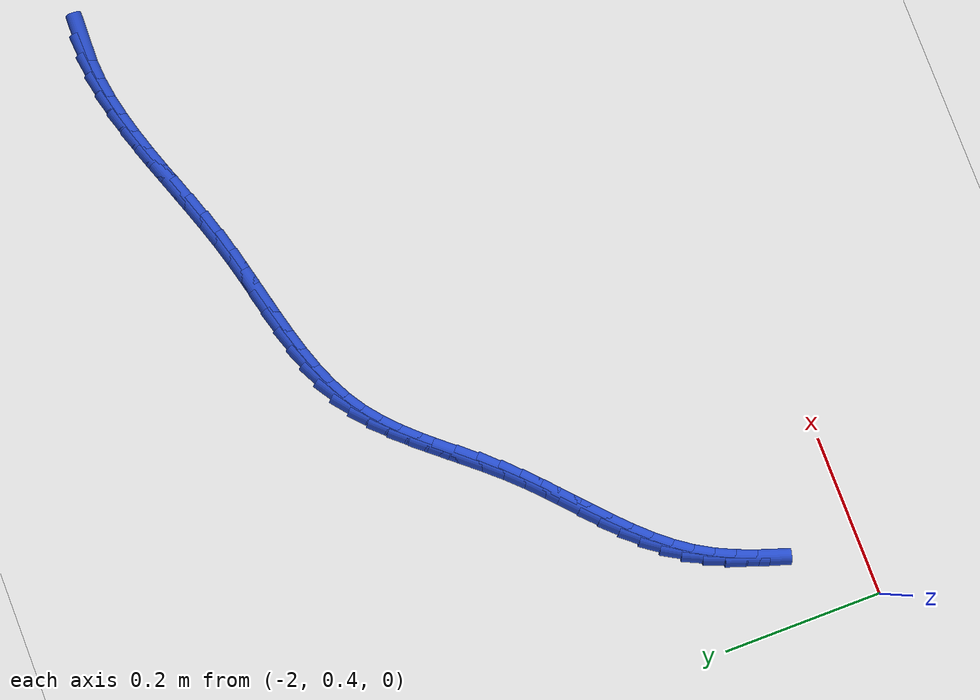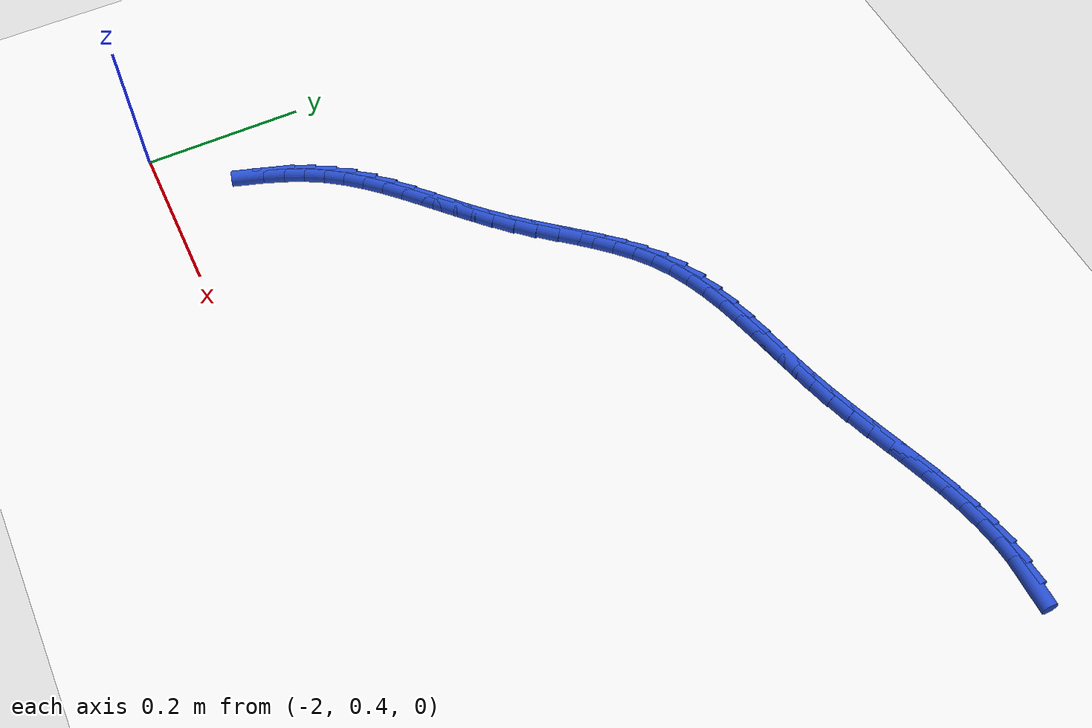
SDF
<sdf version="1.6">
 <world name="default">
  <model name="ground_plane">
   <static>1</static>
   <link name="link">
    <collision name="collision">
     <geometry><plane><normal>0 0 1</normal><size>100 100</size></plane></geometry>
     <surface><friction><ode><mu>100</mu><mu2>50</mu2></ode></friction></surface>
    </collision>
    <visual name="visual">
     <cast_shadows>0</cast_shadows>
     <geometry><plane><normal>0 0 1</normal><size>100 100</size></plane></geometry>
     <material>
      <script><uri>file://media/materials/scripts/gazebo.material</uri><name>Gazebo/WhiteGlow</name></script>
     </material>
    </visual>
   </link>
  </model>
  <model name="line">
   <link name="link_60">
    <pose>-1.0247325221904307 1.0710329499741589 0.01 0 1.57 -0.023708304292810196</pose>
    <collision name="collision">
     <geometry><cylinder><radius>0.01</radius><length>0.08</length></cylinder></geometry>
    </collision>
    <visual name="visual">
     <material>
      <script><name>Gazebo/Blue</name><uri>file://media/materials/scripts/gazebo.material</uri></script>
     </material>
     <geometry><cylinder><radius>0.01</radius><length>0.08</length></cylinder></geometry>
    </visual>
   </link>
   <link name="link_61">
    <pose>-1.0502172767384688 1.071637263518984 0.01 0 1.57 0.07343296345596102</pose>
    <collision name="collision">
     <geometry><cylinder><radius>0.01</radius><length>0.08</length></cylinder></geometry>
    </collision>
    <visual name="visual">
     <material>
      <script><name>Gazebo/Blue</name><uri>file://media/materials/scripts/gazebo.material</uri></script>
     </material>
     <geometry><cylinder><radius>0.01</radius><length>0.08</length></cylinder></geometry>
    </visual>
   </link>
   <link name="link_62">
    <pose>-1.0759186140235304 1.0697465384195703 0.01 0 1.57 0.1548156123089967</pose>
    <collision name="collision">
     <geometry><cylinder><radius>0.01</radius><length>0.08</length></cylinder></geometry>
    </collision>
    <visual name="visual">
     <material>
      <script><name>Gazebo/Blue</name><uri>file://media/materials/scripts/gazebo.material</uri></script>
     </material>
     <geometry><cylinder><radius>0.01</radius><length>0.08</length></cylinder></geometry>
    </visual>
   </link>
   <link name="link_63">
    <pose>-1.1018317932852302 1.06570241225901 0.01 0 1.57 0.22054275431965478</pose>
    <collision name="collision">
     <geometry><cylinder><radius>0.01</radius><length>0.08</length></cylinder></geometry>
    </collision>
    <visual name="visual">
     <material>
      <script><name>Gazebo/Blue</name><uri>file://media/materials/scripts/gazebo.material</uri></script>
     </material>
     <geometry><cylinder><radius>0.01</radius><length>0.08</length></cylinder></geometry>
    </visual>
   </link>
   <link name="link_64">
    <pose>-1.1279520737631834 1.0598465226203937 0.01 0 1.57 0.27144656843689907</pose>
    <collision name="collision">
     <geometry><cylinder><radius>0.01</radius><length>0.08</length></cylinder></geometry>
    </collision>
    <visual name="visual">
     <material>
      <script><name>Gazebo/Blue</name><uri>file://media/materials/scripts/gazebo.material</uri></script>
     </material>
     <geometry><cylinder><radius>0.01</radius><length>0.08</length></cylinder></geometry>
    </visual>
   </link>
   <link name="link_65">
    <pose>-1.1542747146970058 1.0525205070868136 0.01 0 1.57 0.308608717847206</pose>
    <collision name="collision">
     <geometry><cylinder><radius>0.01</radius><length>0.08</length></cylinder></geometry>
    </collision>
    <visual name="visual">
     <material>
      <script><name>Gazebo/Blue</name><uri>file://media/materials/scripts/gazebo.material</uri></script>
     </material>
     <geometry><cylinder><radius>0.01</radius><length>0.08</length></cylinder></geometry>
    </visual>
   </link>
   <link name="link_66">
    <pose>-1.1807949753263123 1.0440660032413613 0.01 0 1.57 0.3330603810830687</pose>
    <collision name="collision">
     <geometry><cylinder><radius>0.01</radius><length>0.08</length></cylinder></geometry>
    </collision>
    <visual name="visual">
     <material>
      <script><name>Gazebo/Blue</name><uri>file://media/materials/scripts/gazebo.material</uri></script>
     </material>
     <geometry><cylinder><radius>0.01</radius><length>0.08</length></cylinder></geometry>
    </visual>
   </link>
   <link name="link_67">
    <pose>-1.2075081148907183 1.0348246486671286 0.01 0 1.57 0.3456249403016464</pose>
    <collision name="collision">
     <geometry><cylinder><radius>0.01</radius><length>0.08</length></cylinder></geometry>
    </collision>
    <visual name="visual">
     <material>
      <script><name>Gazebo/Blue</name><uri>file://media/materials/scripts/gazebo.material</uri></script>
     </material>
     <geometry><cylinder><radius>0.01</radius><length>0.08</length></cylinder></geometry>
    </visual>
   </link>
   <link name="link_68">
    <pose>-1.234409392629839 1.0251380809472073 0.01 0 1.57 0.34685127926090076</pose>
    <collision name="collision">
     <geometry><cylinder><radius>0.01</radius><length>0.08</length></cylinder></geometry>
    </collision>
    <visual name="visual">
     <material>
      <script><name>Gazebo/Blue</name><uri>file://media/materials/scripts/gazebo.material</uri></script>
     </material>
     <geometry><cylinder><radius>0.01</radius><length>0.08</length></cylinder></geometry>
    </visual>
   </link>
   <link name="link_69">
    <pose>-1.2614940677832898 1.0153479376646888 0.01 0 1.57 0.33699877376147974</pose>
    <collision name="collision">
     <geometry><cylinder><radius>0.01</radius><length>0.08</length></cylinder></geometry>
    </collision>
    <visual name="visual">
     <material>
      <script><name>Gazebo/Blue</name><uri>file://media/materials/scripts/gazebo.material</uri></script>
     </material>
     <geometry><cylinder><radius>0.01</radius><length>0.08</length></cylinder></geometry>
    </visual>
   </link>
   <link name="link_70">
    <pose>-1.2887573995906862 1.0057958564026643 0.01 0 1.57 0.31605299089268024</pose>
    <collision name="collision">
     <geometry><cylinder><radius>0.01</radius><length>0.08</length></cylinder></geometry>
    </collision>
    <visual name="visual">
     <material>
      <script><name>Gazebo/Blue</name><uri>file://media/materials/scripts/gazebo.material</uri></script>
     </material>
     <geometry><cylinder><radius>0.01</radius><length>0.08</length></cylinder></geometry>
    </visual>
   </link>
   <link name="link_71">
    <pose>-1.3161946472916428 0.996823474744226 0.01 0 1.57 0.28464280241152184</pose>
    <collision name="collision">
     <geometry><cylinder><radius>0.01</radius><length>0.08</length></cylinder></geometry>
    </collision>
    <visual name="visual">
     <material>
      <script><name>Gazebo/Blue</name><uri>file://media/materials/scripts/gazebo.material</uri></script>
     </material>
     <geometry><cylinder><radius>0.01</radius><length>0.08</length></cylinder></geometry>
    </visual>
   </link>
   <link name="link_72">
    <pose>-1.3437951036640556 0.9887479183227346 0.01 0 1.57 0.2561344135629516</pose>
    <collision name="collision">
     <geometry><cylinder><radius>0.01</radius><length>0.08</length></cylinder></geometry>
    </collision>
    <visual name="visual">
     <material>
      <script><name>Gazebo/Blue</name><uri>file://media/materials/scripts/gazebo.material</uri></script>
     </material>
     <geometry><cylinder><radius>0.01</radius><length>0.08</length></cylinder></geometry>
    </visual>
   </link>
   <link name="link_73">
    <pose>-1.3714550393645775 0.9815041510035148 0.01 0 1.57 0.24134460972041816</pose>
    <collision name="collision">
     <geometry><cylinder><radius>0.01</radius><length>0.08</length></cylinder></geometry>
    </collision>
    <visual name="visual">
     <material>
      <script><name>Gazebo/Blue</name><uri>file://media/materials/scripts/gazebo.material</uri></script>
     </material>
     <geometry><cylinder><radius>0.01</radius><length>0.08</length></cylinder></geometry>
    </visual>
   </link>
   <link name="link_74">
    <pose>-1.3989971507585357 0.9747248721917928 0.01 0 1.57 0.2407979713594593</pose>
    <collision name="collision">
     <geometry><cylinder><radius>0.01</radius><length>0.08</length></cylinder></geometry>
    </collision>
    <visual name="visual">
     <material>
      <script><name>Gazebo/Blue</name><uri>file://media/materials/scripts/gazebo.material</uri></script>
     </material>
     <geometry><cylinder><radius>0.01</radius><length>0.08</length></cylinder></geometry>
    </visual>
   </link>
   <link name="link_75">
    <pose>-1.4262421245115504 0.9680345248653577 0.01 0 1.57 0.2549683180707337</pose>
    <collision name="collision">
     <geometry><cylinder><radius>0.01</radius><length>0.08</length></cylinder></geometry>
    </collision>
    <visual name="visual">
     <material>
      <script><name>Gazebo/Blue</name><uri>file://media/materials/scripts/gazebo.material</uri></script>
     </material>
     <geometry><cylinder><radius>0.01</radius><length>0.08</length></cylinder></geometry>
    </visual>
   </link>
   <link name="link_76">
    <pose>-1.4530106472892392 0.9610575520019974 0.01 0 1.57 0.28460333692492545</pose>
    <collision name="collision">
     <geometry><cylinder><radius>0.01</radius><length>0.08</length></cylinder></geometry>
    </collision>
    <visual name="visual">
     <material>
      <script><name>Gazebo/Blue</name><uri>file://media/materials/scripts/gazebo.material</uri></script>
     </material>
     <geometry><cylinder><radius>0.01</radius><length>0.08</length></cylinder></geometry>
    </visual>
   </link>
   <link name="link_77">
    <pose>-1.4791234057572211 0.9534183965795001 0.01 0 1.57 0.33066056289350887</pose>
    <collision name="collision">
     <geometry><cylinder><radius>0.01</radius><length>0.08</length></cylinder></geometry>
    </collision>
    <visual name="visual">
     <material>
      <script><name>Gazebo/Blue</name><uri>file://media/materials/scripts/gazebo.material</uri></script>
     </material>
     <geometry><cylinder><radius>0.01</radius><length>0.08</length></cylinder></geometry>
    </visual>
   </link>
   <link name="link_78">
    <pose>-1.5044010865811153 0.9447415015756541 0.01 0 1.57 0.394105690108694</pose>
    <collision name="collision">
     <geometry><cylinder><radius>0.01</radius><length>0.08</length></cylinder></geometry>
    </collision>
    <visual name="visual">
     <material>
      <script><name>Gazebo/Blue</name><uri>file://media/materials/scripts/gazebo.material</uri></script>
     </material>
     <geometry><cylinder><radius>0.01</radius><length>0.08</length></cylinder></geometry>
    </visual>
   </link>
   <link name="link_79">
    <pose>-1.5286643764265393 0.9346513099682479 0.01 0 1.57 0.47551409956968077</pose>
    <collision name="collision">
     <geometry><cylinder><radius>0.01</radius><length>0.08</length></cylinder></geometry>
    </collision>
    <visual name="visual">
     <material>
      <script><name>Gazebo/Blue</name><uri>file://media/materials/scripts/gazebo.material</uri></script>
     </material>
     <geometry><cylinder><radius>0.01</radius><length>0.08</length></cylinder></geometry>
    </visual>
   </link>
   <link name="link_80">
    <pose>-1.5517339619591128 0.9227722647350697 0.01 0 1.57 0.5744050828690594</pose>
    <collision name="collision">
     <geometry><cylinder><radius>0.01</radius><length>0.08</length></cylinder></geometry>
    </collision>
    <visual name="visual">
     <material>
      <script><name>Gazebo/Blue</name><uri>file://media/materials/scripts/gazebo.material</uri></script>
     </material>
     <geometry><cylinder><radius>0.01</radius><length>0.08</length></cylinder></geometry>
    </visual>
   </link>
   <link name="link_81">
    <pose>-1.5734311524059512 0.908729820084007 0.01 0 1.57 0.678241673629839</pose>
    <collision name="collision">
     <geometry><cylinder><radius>0.01</radius><length>0.08</length></cylinder></geometry>
    </collision>
    <visual name="visual">
     <material>
      <script><name>Gazebo/Blue</name><uri>file://media/materials/scripts/gazebo.material</uri></script>
     </material>
     <geometry><cylinder><radius>0.01</radius><length>0.08</length></cylinder></geometry>
    </visual>
   </link>
   <link name="link_82">
    <pose>-1.5937202648461868 0.8923817186718762 0.01 0 1.57 0.761327529529354</pose>
    <collision name="collision">
     <geometry><cylinder><radius>0.01</radius><length>0.08</length></cylinder></geometry>
    </collision>
    <visual name="visual">
     <material>
      <script><name>Gazebo/Blue</name><uri>file://media/materials/scripts/gazebo.material</uri></script>
     </material>
     <geometry><cylinder><radius>0.01</radius><length>0.08</length></cylinder></geometry>
    </visual>
   </link>
   <link name="link_83">
    <pose>-1.6128902778005878 0.8741130525397355 0.01 0 1.57 0.8207138590774498</pose>
    <collision name="collision">
     <geometry><cylinder><radius>0.01</radius><length>0.08</length></cylinder></geometry>
    </collision>
    <visual name="visual">
     <material>
      <script><name>Gazebo/Blue</name><uri>file://media/materials/scripts/gazebo.material</uri></script>
     </material>
     <geometry><cylinder><radius>0.01</radius><length>0.08</length></cylinder></geometry>
    </visual>
   </link>
   <link name="link_84">
    <pose>-1.6312749785494636 0.8543816968458363 0.01 0 1.57 0.8577578171357773</pose>
    <collision name="collision">
     <geometry><cylinder><radius>0.01</radius><length>0.08</length></cylinder></geometry>
    </collision>
    <visual name="visual">
     <material>
      <script><name>Gazebo/Blue</name><uri>file://media/materials/scripts/gazebo.material</uri></script>
     </material>
     <geometry><cylinder><radius>0.01</radius><length>0.08</length></cylinder></geometry>
    </visual>
   </link>
   <link name="link_85">
    <pose>-1.6492081543731274 0.8336455267484318 0.01 0 1.57 0.8738572445778856</pose>
    <collision name="collision">
     <geometry><cylinder><radius>0.01</radius><length>0.08</length></cylinder></geometry>
    </collision>
    <visual name="visual">
     <material>
      <script><name>Gazebo/Blue</name><uri>file://media/materials/scripts/gazebo.material</uri></script>
     </material>
     <geometry><cylinder><radius>0.01</radius><length>0.08</length></cylinder></geometry>
    </visual>
   </link>
   <link name="link_86">
    <pose>-1.667023592551889 0.8123624174057742 0.01 0 1.57 0.8699770008717851</pose>
    <collision name="collision">
     <geometry><cylinder><radius>0.01</radius><length>0.08</length></cylinder></geometry>
    </collision>
    <visual name="visual">
     <material>
      <script><name>Gazebo/Blue</name><uri>file://media/materials/scripts/gazebo.material</uri></script>
     </material>
     <geometry><cylinder><radius>0.01</radius><length>0.08</length></cylinder></geometry>
    </visual>
   </link>
   <link name="link_87">
    <pose>-1.6850550803660609 0.7909902439761158 0.01 0 1.57 0.8465082055135204</pose>
    <collision name="collision">
     <geometry><cylinder><radius>0.01</radius><length>0.08</length></cylinder></geometry>
    </collision>
    <visual name="visual">
     <material>
      <script><name>Gazebo/Blue</name><uri>file://media/materials/scripts/gazebo.material</uri></script>
     </material>
     <geometry><cylinder><radius>0.01</radius><length>0.08</length></cylinder></geometry>
    </visual>
   </link>
   <link name="link_88">
    <pose>-1.703636405095954 0.769986881617709 0.01 0 1.57 0.8054081007350969</pose>
    <collision name="collision">
     <geometry><cylinder><radius>0.01</radius><length>0.08</length></cylinder></geometry>
    </collision>
    <visual name="visual">
     <material>
      <script><name>Gazebo/Blue</name><uri>file://media/materials/scripts/gazebo.material</uri></script>
     </material>
     <geometry><cylinder><radius>0.01</radius><length>0.08</length></cylinder></geometry>
    </visual>
   </link>
   <link name="link_89">
    <pose>-1.723061143653109 0.7497687865550977 0.01 0 1.57 0.767520038656162</pose>
    <collision name="collision">
     <geometry><cylinder><radius>0.01</radius><length>0.08</length></cylinder></geometry>
    </collision>
    <visual name="visual">
     <material>
      <script><name>Gazebo/Blue</name><uri>file://media/materials/scripts/gazebo.material</uri></script>
     </material>
     <geometry><cylinder><radius>0.01</radius><length>0.08</length></cylinder></geometry>
    </visual>
   </link>
   <link name="link_90">
    <pose>-1.7432103333880007 0.7303274761412382 0.01 0 1.57 0.7451011366943241</pose>
    <collision name="collision">
     <geometry><cylinder><radius>0.01</radius><length>0.08</length></cylinder></geometry>
    </collision>
    <visual name="visual">
     <material>
      <script><name>Gazebo/Blue</name><uri>file://media/materials/scripts/gazebo.material</uri></script>
     </material>
     <geometry><cylinder><radius>0.01</radius><length>0.08</length></cylinder></geometry>
    </visual>
   </link>
   <link name="link_91">
    <pose>-1.7637228029530696 0.7114049791938127 0.01 0 1.57 0.7382958988983584</pose>
    <collision name="collision">
     <geometry><cylinder><radius>0.01</radius><length>0.08</length></cylinder></geometry>
    </collision>
    <visual name="visual">
     <material>
      <script><name>Gazebo/Blue</name><uri>file://media/materials/scripts/gazebo.material</uri></script>
     </material>
     <geometry><cylinder><radius>0.01</radius><length>0.08</length></cylinder></geometry>
    </visual>
   </link>
   <link name="link_92">
    <pose>-1.7842342954415058 0.6927401462315271 0.01 0 1.57 0.7473396163864149</pose>
    <collision name="collision">
     <geometry><cylinder><radius>0.01</radius><length>0.08</length></cylinder></geometry>
    </collision>
    <visual name="visual">
     <material>
      <script><name>Gazebo/Blue</name><uri>file://media/materials/scripts/gazebo.material</uri></script>
     </material>
     <geometry><cylinder><radius>0.01</radius><length>0.08</length></cylinder></geometry>
    </visual>
   </link>
   <link name="link_93">
    <pose>-1.8043805539465032 0.674071827773086 0.01 0 1.57 0.7727829865417167</pose>
    <collision name="collision">
     <geometry><cylinder><radius>0.01</radius><length>0.08</length></cylinder></geometry>
    </collision>
    <visual name="visual">
     <material>
      <script><name>Gazebo/Blue</name><uri>file://media/materials/scripts/gazebo.material</uri></script>
     </material>
     <geometry><cylinder><radius>0.01</radius><length>0.08</length></cylinder></geometry>
    </visual>
   </link>
   <link name="link_94">
    <pose>-1.8237973215612509 0.6551388743371953 0.01 0 1.57 0.8154490729454908</pose>
    <collision name="collision">
     <geometry><cylinder><radius>0.01</radius><length>0.08</length></cylinder></geometry>
    </collision>
    <visual name="visual">
     <material>
      <script><name>Gazebo/Blue</name><uri>file://media/materials/scripts/gazebo.material</uri></script>
     </material>
     <geometry><cylinder><radius>0.01</radius><length>0.08</length></cylinder></geometry>
    </visual>
   </link>
   <link name="link_95">
    <pose>-1.8421203413789413 0.6356801364425597 0.01 0 1.57 0.8762440013082029</pose>
    <collision name="collision">
     <geometry><cylinder><radius>0.01</radius><length>0.08</length></cylinder></geometry>
    </collision>
    <visual name="visual">
     <material>
      <script><name>Gazebo/Blue</name><uri>file://media/materials/scripts/gazebo.material</uri></script>
     </material>
     <geometry><cylinder><radius>0.01</radius><length>0.08</length></cylinder></geometry>
    </visual>
   </link>
   <link name="link_96">
    <pose>-1.858985356492766 0.6154344646078843 0.01 0 1.57 0.9557614966919132</pose>
    <collision name="collision">
     <geometry><cylinder><radius>0.01</radius><length>0.08</length></cylinder></geometry>
    </collision>
    <visual name="visual">
     <material>
      <script><name>Gazebo/Blue</name><uri>file://media/materials/scripts/gazebo.material</uri></script>
     </material>
     <geometry><cylinder><radius>0.01</radius><length>0.08</length></cylinder></geometry>
    </visual>
   </link>
   <link name="link_97">
    <pose>-1.8740281099959157 0.594140709351875 0.01 0 1.57 1.0488602646016594</pose>
    <collision name="collision">
     <geometry><cylinder><radius>0.01</radius><length>0.08</length></cylinder></geometry>
    </collision>
    <visual name="visual">
     <material>
      <script><name>Gazebo/Blue</name><uri>file://media/materials/scripts/gazebo.material</uri></script>
     </material>
     <geometry><cylinder><radius>0.01</radius><length>0.08</length></cylinder></geometry>
    </visual>
   </link>
   <link name="link_98">
    <pose>-1.886990818504825 0.5716021774515194 0.01 0 1.57 1.1323760176267492</pose>
    <collision name="collision">
     <geometry><cylinder><radius>0.01</radius><length>0.08</length></cylinder></geometry>
    </collision>
    <visual name="visual">
     <material>
      <script><name>Gazebo/Blue</name><uri>file://media/materials/scripts/gazebo.material</uri></script>
     </material>
     <geometry><cylinder><radius>0.01</radius><length>0.08</length></cylinder></geometry>
    </visual>
   </link>
   <link name="link_99">
    <pose>-1.898097222700272 0.5479136776320426 0.01 0 1.57 1.1992220364787889</pose>
    <collision name="collision">
     <geometry><cylinder><radius>0.01</radius><length>0.08</length></cylinder></geometry>
    </collision>
    <visual name="visual">
     <material>
      <script><name>Gazebo/Blue</name><uri>file://media/materials/scripts/gazebo.material</uri></script>
     </material>
     <geometry><cylinder><radius>0.01</radius><length>0.08</length></cylinder></geometry>
    </visual>
   </link>
   <link name="link_100">
    <pose>-1.9077071216774235 0.5232523847885152 0.01 0 1.57 1.2494854347738438</pose>
    <collision name="collision">
     <geometry><cylinder><radius>0.01</radius><length>0.08</length></cylinder></geometry>
    </collision>
    <visual name="visual">
     <material>
      <script><name>Gazebo/Blue</name><uri>file://media/materials/scripts/gazebo.material</uri></script>
     </material>
     <geometry><cylinder><radius>0.01</radius><length>0.08</length></cylinder></geometry>
    </visual>
   </link>
  </model>
 </world>
</sdf>
